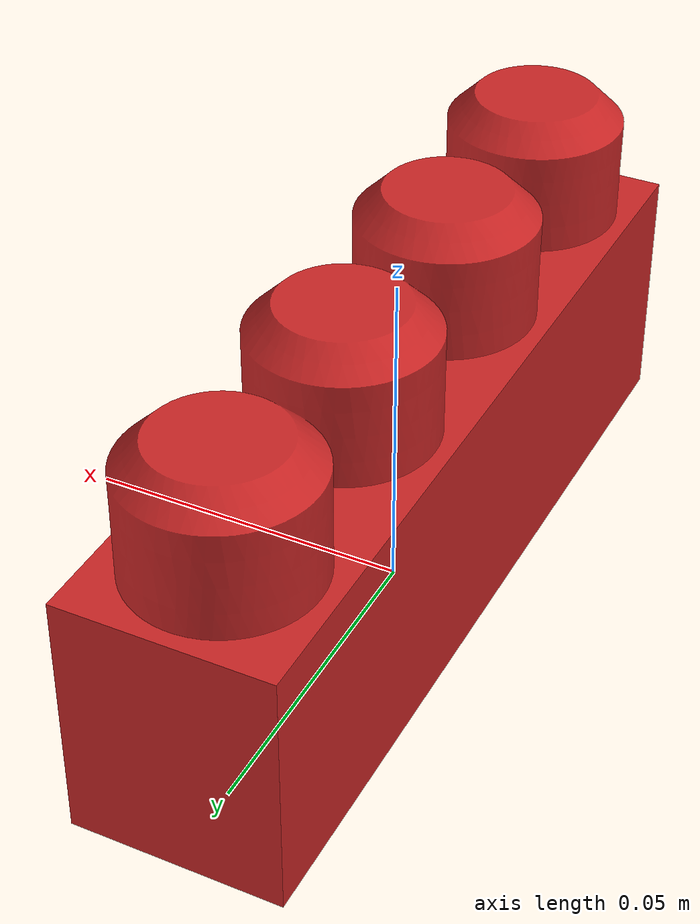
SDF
<?xml version='1.0'?>
<sdf version="1.6">

         <model name="mesh_X1-Y4-Z2">
             <static>0</static>
             <self_collide>0</self_collide>
             <allow_auto_disable>1</allow_auto_disable>

            <pose>0 0 0 0 -0 0</pose>

             <link name="link">

                 <gravity>1</gravity>
                 <self_collide>0</self_collide>
                 <kinematic>0</kinematic>

                <pose>0 0 0 0 -0 0</pose>

                <inertial>
                    <!-- Volume:  2.8117754000e-05 -->
                    <mass>0.001</mass>

                    <!-- Center of mass: -4.0000000000e-08 -1.8759000000e-04  2.9235880000e-02 -->
                    <pose>0 0 -0.064e-02 0 0 0</pose>

                    <!-- Inertia matrix -->
                    <inertia>
                        <ixx>0</ixx>
                        <ixy>0</ixy>
                        <ixz>0</ixz>
                        <iyy>0</iyy>
                        <iyz>0</iyz>
                        <izz>0</izz>
                    </inertia>
                </inertial>

                 <collision name="collision">
                     <!--
                         Maximum number of contacts allowed between two entities.
                         This value overrides the max_contacts element defined in physics.
                     -->
                     <max_contacts>20</max_contacts>

                    <pose>0 0 0 0 -0 0</pose>

                     <geometry>
                         <mesh>
                             <uri>model://X1-Y4-Z2/mesh/X1-Y4-Z2.stl</uri>
                             <!-- Scaling factor applied to the mesh -->
                             <scale>1.0 1.0 1.0</scale>
                         </mesh>
                     </geometry>
                     <!-- http://sdformat.org/spec?ver=1.6&elem=collision#surface_soft_contact -->
                     <surface>
                        <contact>
                            <ode>
                                <max_vel>0.0</max_vel>
                                <min_depth>0.008</min_depth>
                            </ode>
                        </contact>
                    </surface>
                 </collision>

                 <visual name="visual">
                     <cast_shadows>1</cast_shadows>
                     <transparency>0</transparency>

                     <pose>0 0 0 0 -0 0</pose>

                     <material>

                         <script>
                             <uri>file://media/materials/scripts/gazebo.material</uri>
                             <name>Gazebo/Red</name>
                         </script>
                         <shader type="vertex">
                           <normal_map>__default__</normal_map>
                         </shader>

                     </material>

                     <geometry>
                         <mesh>
                             <uri>model://X1-Y4-Z2/mesh/X1-Y4-Z2.stl</uri>
                             <!-- Scaling factor applied to the mesh -->
                             <scale>1.0 1.0 1.0</scale>
                         </mesh>
                     </geometry>
                 </visual>
             </link>
         </model>
     </sdf>
